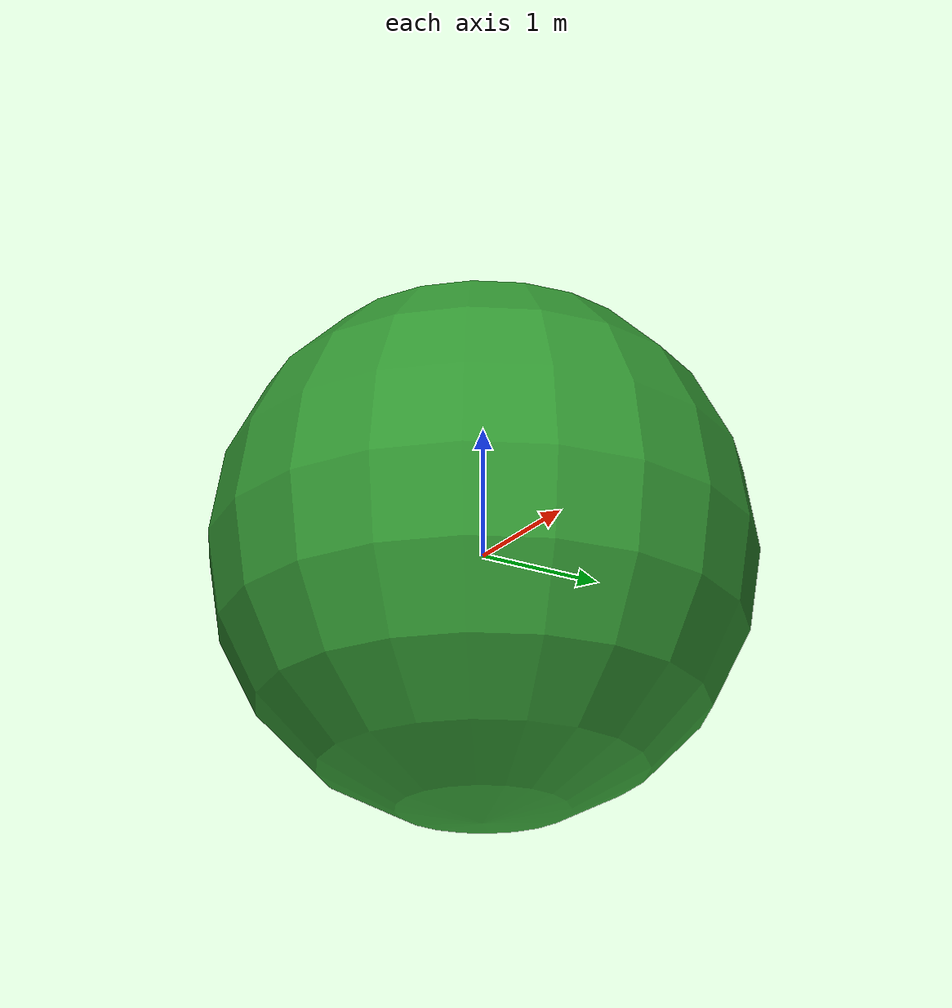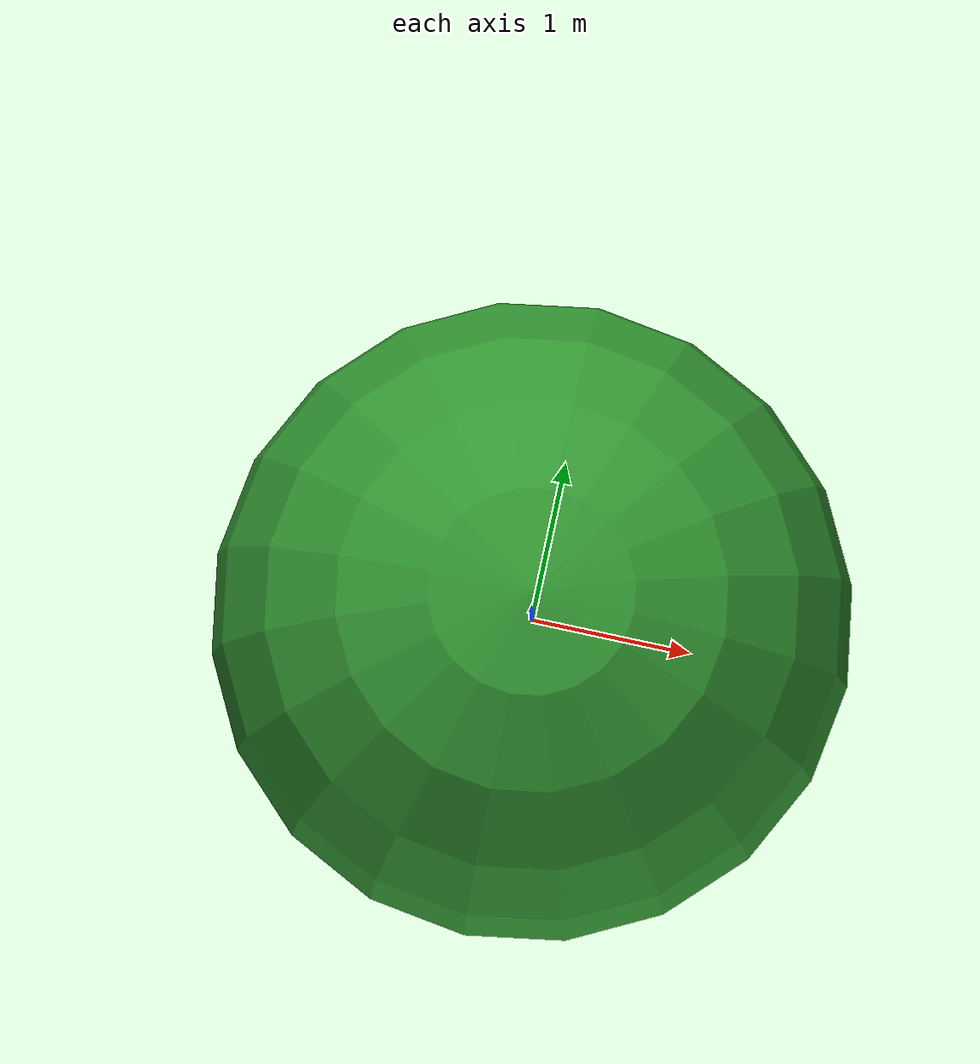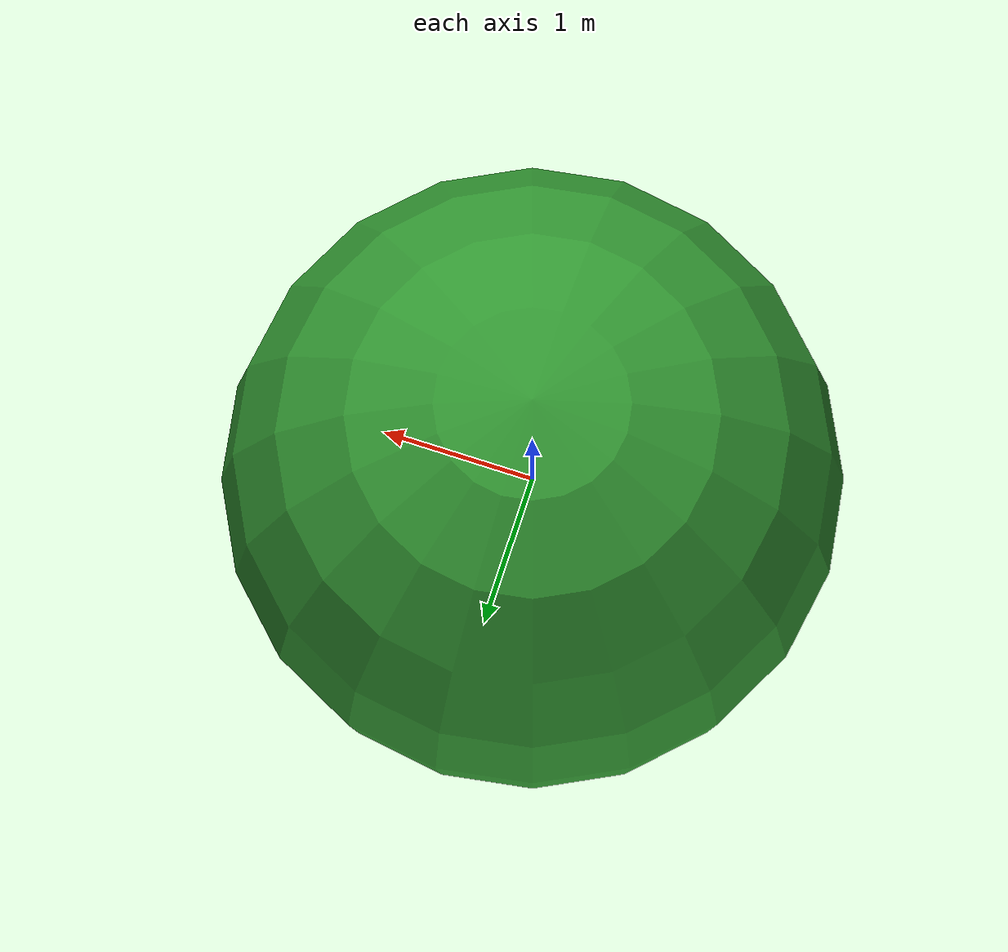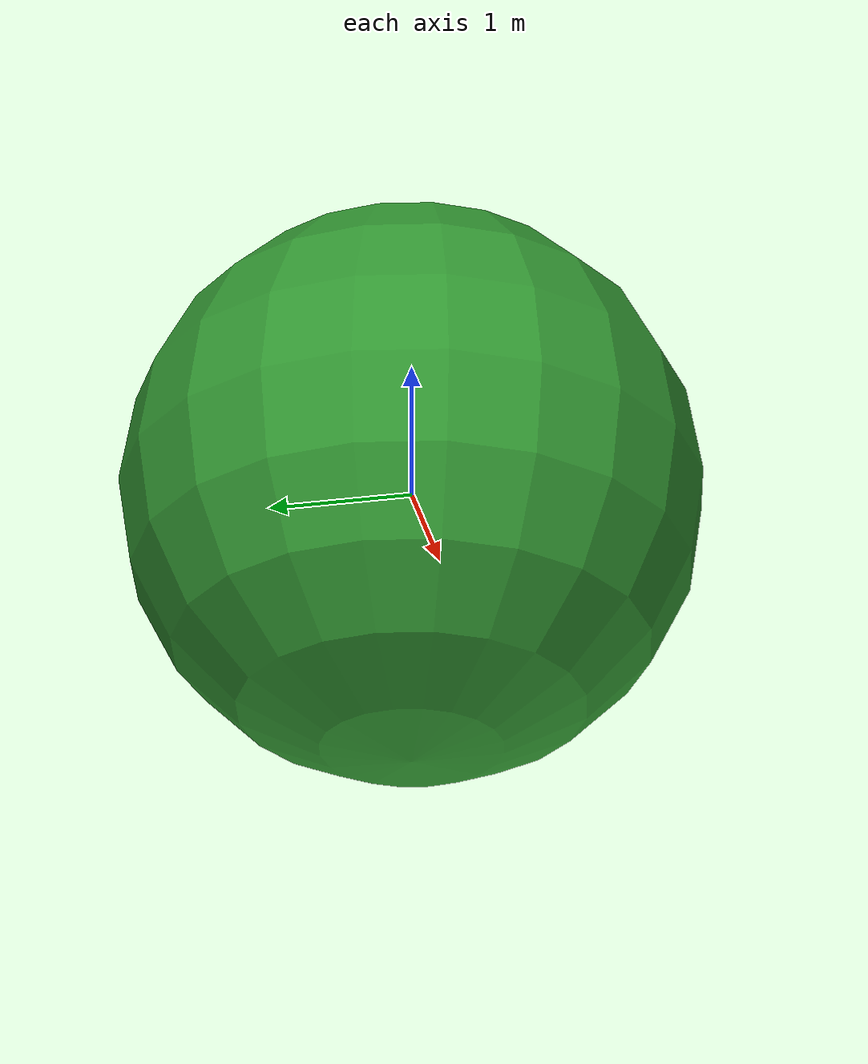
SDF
<?xml version="1.0"?>
<sdf version="1.9">
  <model name="big_tree">
    <static>true</static>
    <link name="trunk">
      <collision name="collision">
        <geometry>
          <cylinder>
            <radius>0.3</radius>
            <length>3.0</length>
          </cylinder>
        </geometry>
      </collision>
      <visual name="visual">
        <geometry>
          <cylinder>
            <radius>0.3</radius>
            <length>3.0</length>
          </cylinder>
        </geometry>
        <material>
          <ambient>0.4 0.3 0.2 1</ambient>
          <diffuse>0.5 0.35 0.25 1</diffuse>
          <specular>0.1 0.1 0.1 1</specular>
        </material>
      </visual>
    </link>
    <link name="foliage">
      <collision name="collision">
        <geometry>
          <sphere>
            <radius>2.0</radius>
          </sphere>
        </geometry>
      </collision>
      <visual name="visual">
        <geometry>
          <sphere>
            <radius>2.0</radius>
          </sphere>
        </geometry>
        <material>
          <ambient>0.1 0.4 0.1 1</ambient>
          <diffuse>0.2 0.6 0.2 1</diffuse>
          <specular>0.1 0.1 0.1 1</specular>
        </material>
      </visual>
    </link>
    <joint name="foliage_joint" type="fixed">
      <parent>trunk</parent>
      <child>foliage</child>
      <pose>0 0 2.5 0 0 0</pose>
    </joint>
  </model>
</sdf>
